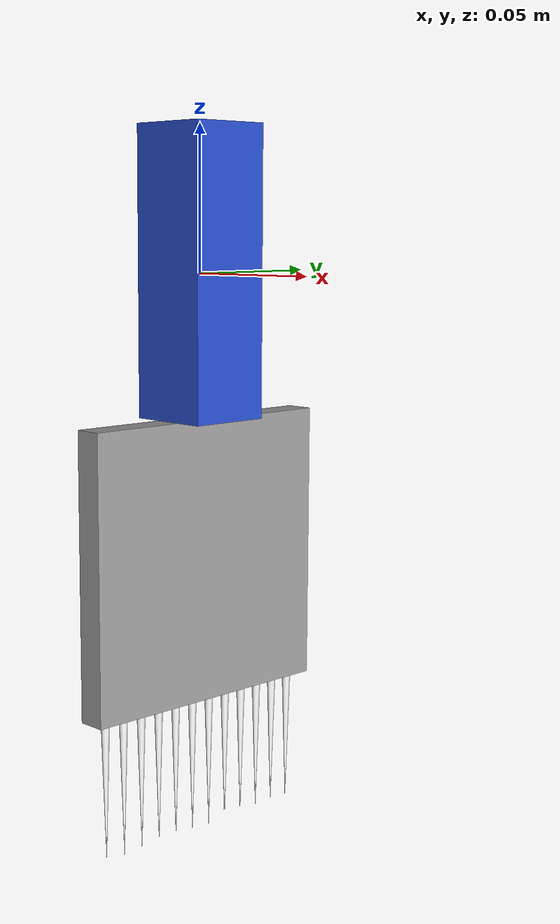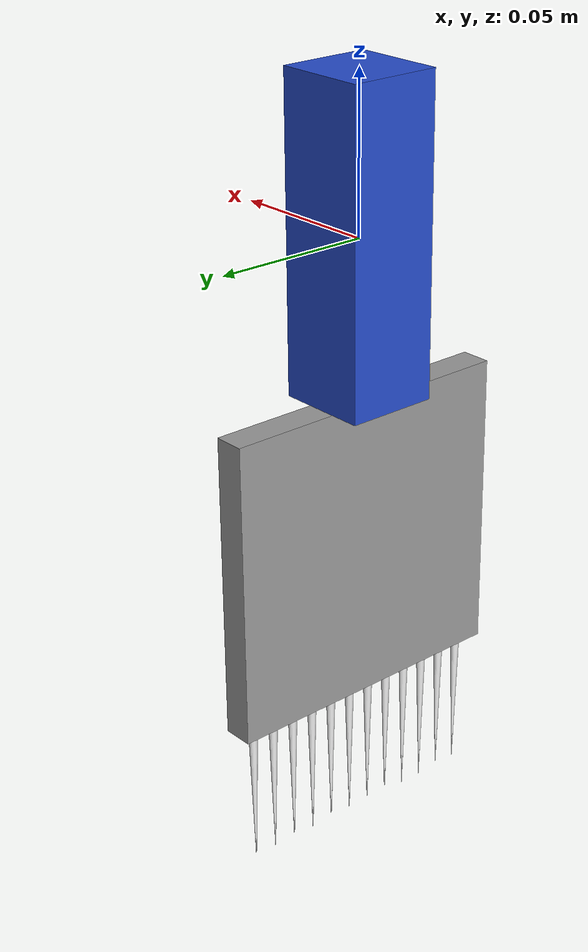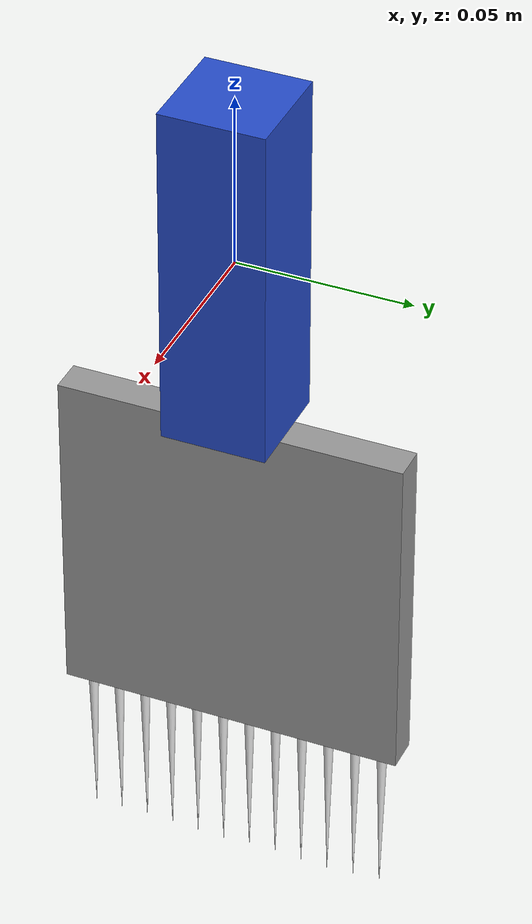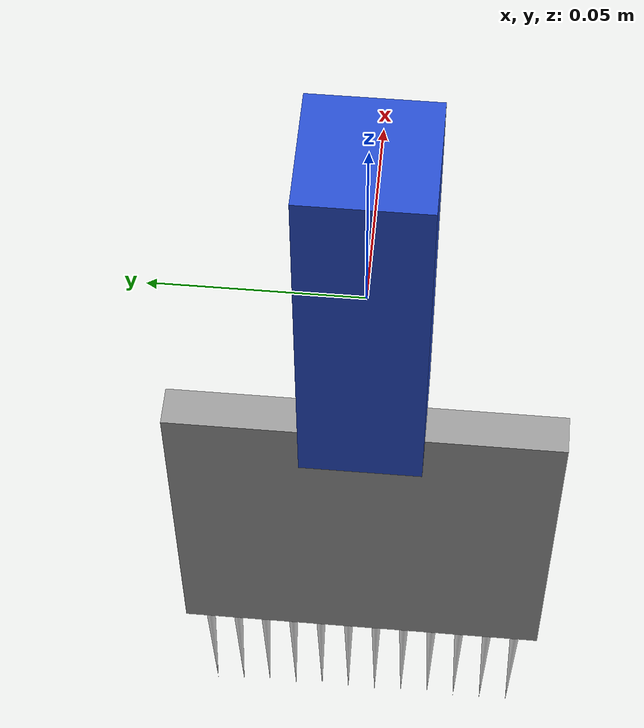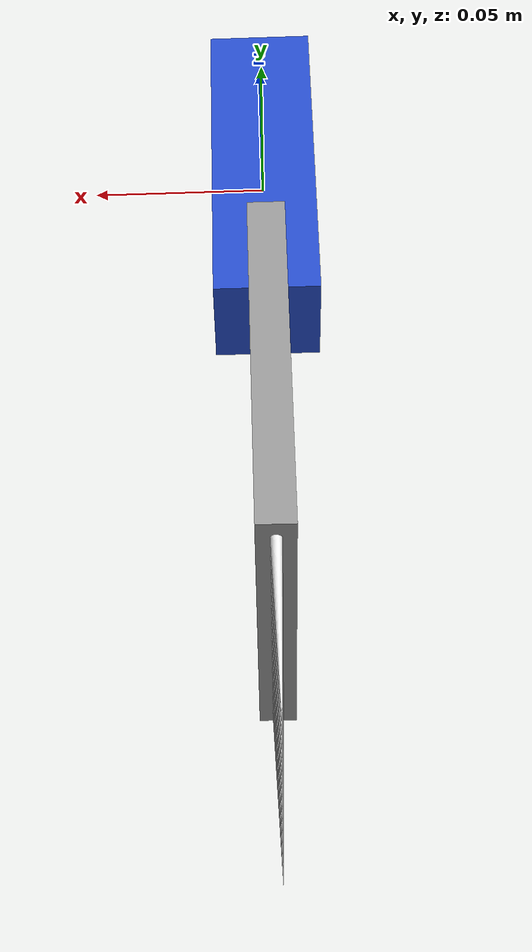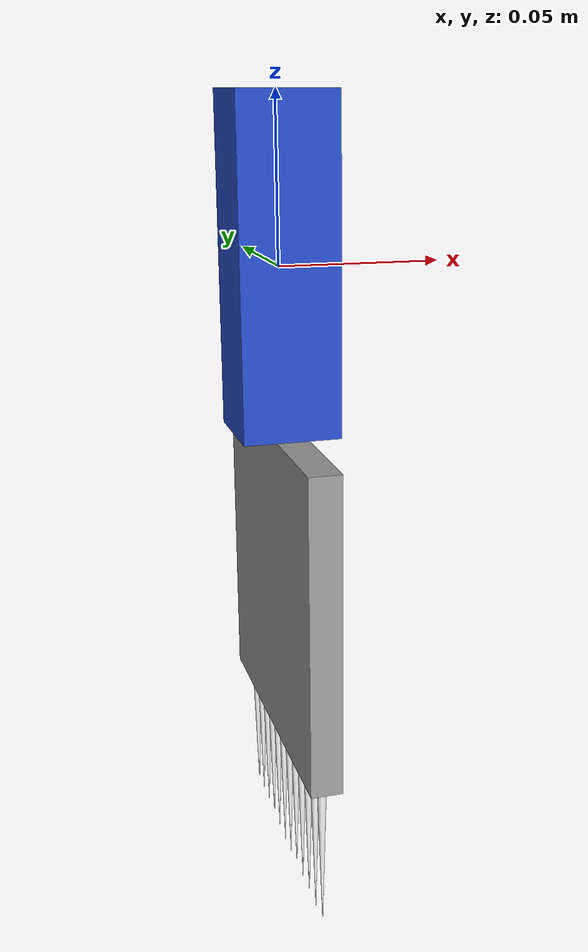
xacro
<robot name="pipette"
       xmlns:xi="http://www.w3.org/2001/XInclude"
       xmlns:gazebo="http://playerstage.sourceforge.net/gazebo/xmlschema/#gz"
       xmlns:model="http://playerstage.sourceforge.net/gazebo/xmlschema/#model"
       xmlns:sensor="http://playerstage.sourceforge.net/gazebo/xmlschema/#sensor"
       xmlns:body="http://playerstage.sourceforge.net/gazebo/xmlschema/#body"
       xmlns:geom="http://playerstage.sourceforge.net/gazebo/xmlschema/#geom"
       xmlns:joint="http://playerstage.sourceforge.net/gazebo/xmlschema/#joint"
       xmlns:interface="http://playerstage.sourceforge.net/gazebo/xmlschema/#interface"
       xmlns:rendering="http://playerstage.sourceforge.net/gazebo/xmlschema/#rendering"
       xmlns:renderable="http://playerstage.sourceforge.net/gazebo/xmlschema/#renderable"
       xmlns:controller="http://playerstage.sourceforge.net/gazebo/xmlschema/#controller"
       xmlns:xacro="http://ros.org/wiki/xacro"
       xmlns:physics="http://playerstage.sourceforge.net/gazebo/xmlschema/#physics">

  <xacro:property name="M_PI" value="3.1415926535897931" />

  <xacro:property name="pipette_handle_size_x" value="0.03" />
  <xacro:property name="pipette_handle_size_y" value="0.03" />
  <xacro:property name="pipette_handle_size_z" value="0.10" />

  <xacro:property name="pipette_base_size_x" value="0.01" />
  <xacro:property name="pipette_base_size_y" value="0.10" />
  <xacro:property name="pipette_base_size_z" value="0.10" />

  <xacro:property name="pipette_tip_x" value="0.00" />
  <xacro:property name="pipette_tip_y" value="0.00" />
  <xacro:property name="pipette_tip_z" value="-0.05" />

  <xacro:property name="pipette_tip_size_x" value="0.003" />
  <xacro:property name="pipette_tip_size_y" value="0.003" />
  <xacro:property name="pipette_tip_size_z" value="0.050" />

  <link name="pipette_handle_link">
    <inertial>
      <origin xyz="0 0 0.0" />
      <mass value="0.2" />
      <inertia  ixx="0.001" ixy="0.0"  ixz="0.0"  iyy="0.001"  iyz="0.0"  izz="0.001" />
    </inertial>
    <visual>
      <origin xyz="0 0 0"/>
      <geometry>
        <box size="${pipette_handle_size_x} ${pipette_handle_size_y} ${pipette_handle_size_z}" />
      </geometry>
    </visual>
    <collision>
      <origin xyz="0 0 0"/>
      <geometry>
        <box size="${pipette_handle_size_x} ${pipette_handle_size_y} ${pipette_handle_size_z}" />
      </geometry>
    </collision>
  </link>
  <gazebo reference="pipette_handle_link">
    <material>Gazebo/Blue</material>
    <turnGravityOff>true</turnGravityOff>
    <genTexCoord>true</genTexCoord>
  </gazebo>

  <joint name="pipette_base_joint" type="fixed" >
    <parent link="pipette_handle_link" />
    <origin xyz="0 0 ${-(pipette_handle_size_z+pipette_base_size_z)/2}" rpy="0 0 0" />
    <child link="pipette_base_link" />
  </joint>

  <link name="pipette_base_link">
    <inertial>
      <origin xyz="0 0 0.0" />
      <mass value="0.2" />
      <inertia  ixx="0.001" ixy="0.0"  ixz="0.0"  iyy="0.001"  iyz="0.0"  izz="0.001" />
    </inertial>
    <visual>
      <origin xyz="0 0 0"/>
      <geometry>
        <box size="${pipette_base_size_x} ${pipette_base_size_y} ${pipette_base_size_z}" />
      </geometry>
    </visual>
    <collision>
      <origin xyz="0 0 0"/>
      <geometry>
        <box size="${pipette_base_size_x} ${pipette_base_size_y} ${pipette_base_size_z}" />
      </geometry>
    </collision>
  </link>
  <gazebo reference="pipette_base_link">
    <material>Gazebo/Grey</material>
    <turnGravityOff>true</turnGravityOff>
    <genTexCoord>true</genTexCoord>
  </gazebo>

  <xacro:macro name="tips" params="n offset_x offset_y offset_z base_radius length parent">
    <joint name="tip_${n}_joint" type="fixed" >
      <parent link="${parent}" />
      <origin xyz="${offset_x} ${offset_y} ${offset_z}" rpy="0 ${M_PI} 0" />
      <child link="pipette_tip_${n}_link" />
    </joint>
    <link name="pipette_tip_${n}_link">
      <inertial>
        <origin xyz="0 0 0.0" />
        <mass value="0.2" />
        <inertia  ixx="0.001" ixy="0.0"  ixz="0.0"  iyy="0.001"  iyz="0.0"  izz="0.001" />
      </inertial>
      <visual>
        <origin xyz="0 0 0"/>
        <geometry>
          <mesh filename="package://gazebo_worlds/Media/models/trimesh_cone.stl"
                scale="${pipette_tip_size_x} ${pipette_tip_size_y} ${pipette_tip_size_z}"/>
        </geometry>
      </visual>
      <collision>
        <origin xyz="0 0 0"/>
        <geometry>
          <mesh filename="package://gazebo_worlds/Media/models/trimesh_cone.stl"
                scale="${pipette_tip_size_x} ${pipette_tip_size_y} ${pipette_tip_size_z}"/>
        </geometry>
      </collision>
    </link>
    <gazebo reference="pipette_tip_${n}_link">
      <material>Gazebo/White</material>
      <turnGravityOff>true</turnGravityOff>
      <genTexCoord>true</genTexCoord>
    </gazebo>
  </xacro:macro>

  <xacro:property name="pipette_tip_spacing_y" value="0.008" />
  <xacro:tips n="01" offset_x="0" offset_y="${-5.5*pipette_tip_spacing_y}" offset_z="${-pipette_base_size_z/2}" base_radius="0.002" length="0.05" parent="pipette_base_link"/>
  <xacro:tips n="02" offset_x="0" offset_y="${-4.5*pipette_tip_spacing_y}" offset_z="${-pipette_base_size_z/2}" base_radius="0.002" length="0.05" parent="pipette_base_link"/>
  <xacro:tips n="03" offset_x="0" offset_y="${-3.5*pipette_tip_spacing_y}" offset_z="${-pipette_base_size_z/2}" base_radius="0.002" length="0.05" parent="pipette_base_link"/>
  <xacro:tips n="04" offset_x="0" offset_y="${-2.5*pipette_tip_spacing_y}" offset_z="${-pipette_base_size_z/2}" base_radius="0.002" length="0.05" parent="pipette_base_link"/>
  <xacro:tips n="05" offset_x="0" offset_y="${-1.5*pipette_tip_spacing_y}" offset_z="${-pipette_base_size_z/2}" base_radius="0.002" length="0.05" parent="pipette_base_link"/>
  <xacro:tips n="06" offset_x="0" offset_y="${-0.5*pipette_tip_spacing_y}" offset_z="${-pipette_base_size_z/2}" base_radius="0.002" length="0.05" parent="pipette_base_link"/>
  <xacro:tips n="07" offset_x="0" offset_y="${+0.5*pipette_tip_spacing_y}" offset_z="${-pipette_base_size_z/2}" base_radius="0.002" length="0.05" parent="pipette_base_link"/>
  <xacro:tips n="08" offset_x="0" offset_y="${+1.5*pipette_tip_spacing_y}" offset_z="${-pipette_base_size_z/2}" base_radius="0.002" length="0.05" parent="pipette_base_link"/>
  <xacro:tips n="09" offset_x="0" offset_y="${+2.5*pipette_tip_spacing_y}" offset_z="${-pipette_base_size_z/2}" base_radius="0.002" length="0.05" parent="pipette_base_link"/>
  <xacro:tips n="10" offset_x="0" offset_y="${+3.5*pipette_tip_spacing_y}" offset_z="${-pipette_base_size_z/2}" base_radius="0.002" length="0.05" parent="pipette_base_link"/>
  <xacro:tips n="11" offset_x="0" offset_y="${+4.5*pipette_tip_spacing_y}" offset_z="${-pipette_base_size_z/2}" base_radius="0.002" length="0.05" parent="pipette_base_link"/>
  <xacro:tips n="12" offset_x="0" offset_y="${+5.5*pipette_tip_spacing_y}" offset_z="${-pipette_base_size_z/2}" base_radius="0.002" length="0.05" parent="pipette_base_link"/>

</robot>
